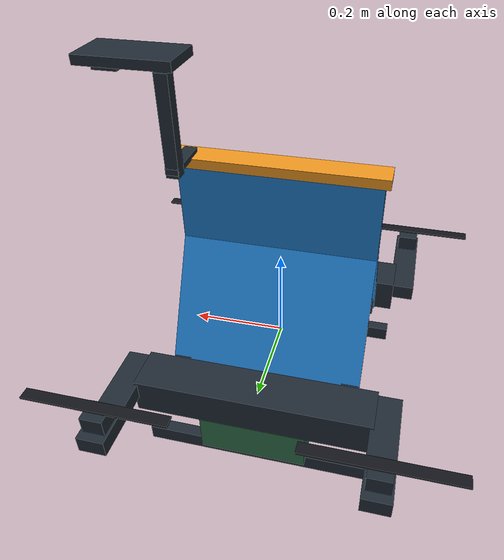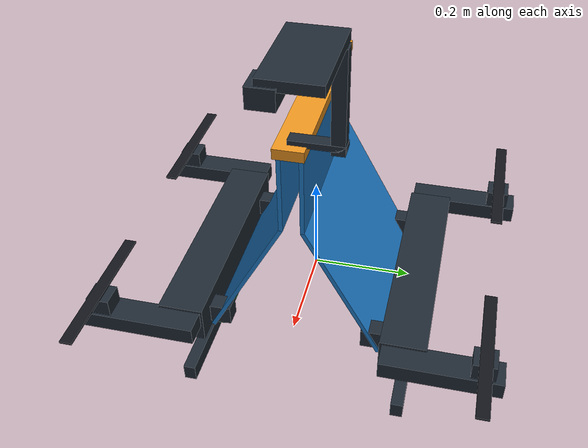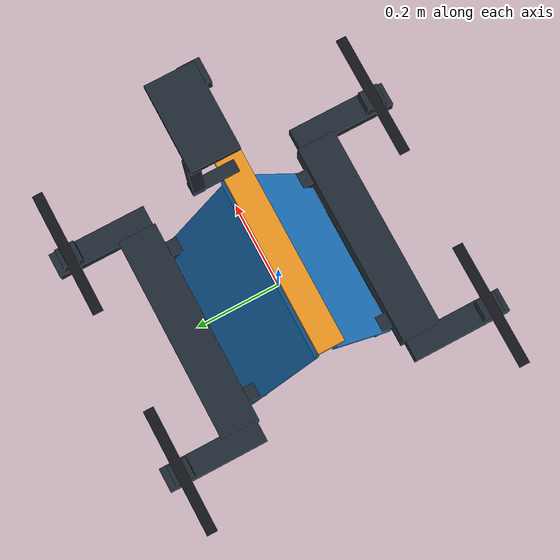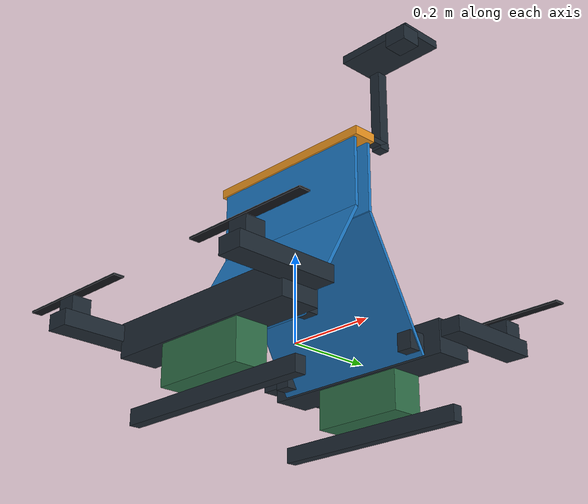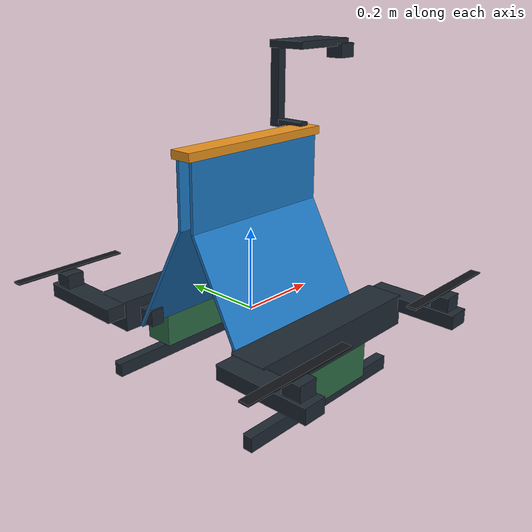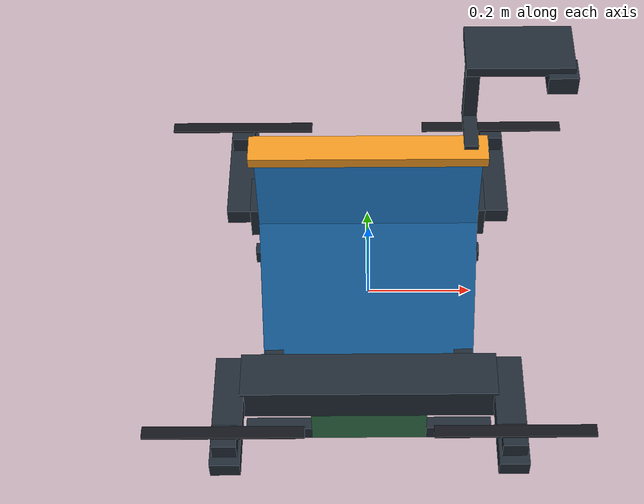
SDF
<?xml version='1.0' encoding='utf-8'?>
<sdf version="1.10">
  <model name="powerline_perching">
    <self_collide>false</self_collide>
    <link name="base_link">
      <inertial>
        <pose>0.006551366309 0.0007097890003 0.03183120028 0 0 0</pose>
        <mass>2.891</mass>
        <inertia>
          <ixx>0.219188799889</ixx>
          <ixy>-0.000406316596333</ixy>
          <ixz>-0.0103420370668</ixz>
          <iyy>0.140336191501</iyy>
          <iyz>-0.00103571837703</iyz>
          <izz>0.217747667632</izz>
        </inertia>
      </inertial>
      <visual name="left_body_visual">
        <pose>0 0.22 0 0 0 0</pose>
        <geometry>
          <box>
            <size>0.48 0.09 0.075</size>
          </box>
        </geometry>
        <material>
          <ambient>.12 .16 .20 1</ambient>
          <diffuse>.12 .16 .20 1</diffuse>
        </material>
      </visual>
      <collision name="left_body_collision">
        <pose>0 0.22 0 0 0 0</pose>
        <geometry>
          <box>
            <size>0.48 0.09 0.075</size>
          </box>
        </geometry>
        <surface>
          <friction>
            <ode>
              <mu>0.65</mu>
              <mu2>0.65</mu2>
            </ode>
          </friction>
        </surface>
      </collision>
      <visual name="left_battery_visual">
        <pose>0 0.22 -0.0825 0 0 0</pose>
        <geometry>
          <box>
            <size>0.22 0.078 0.09</size>
          </box>
        </geometry>
        <material>
          <ambient>.18 .43 .28 1</ambient>
          <diffuse>.18 .43 .28 1</diffuse>
        </material>
      </visual>
      <collision name="left_battery_collision">
        <pose>0 0.22 -0.0825 0 0 0</pose>
        <geometry>
          <box>
            <size>0.22 0.078 0.09</size>
          </box>
        </geometry>
        <surface>
          <friction>
            <ode>
              <mu>0.65</mu>
              <mu2>0.65</mu2>
            </ode>
          </friction>
        </surface>
      </collision>
      <visual name="left_flare_visual">
        <pose>0 0.095 0.1025 0.4993467217 0 0</pose>
        <geometry>
          <box>
            <size>0.4 0.008 0.3132491022</size>
          </box>
        </geometry>
        <material>
          <ambient>.12 .48 .78 1</ambient>
          <diffuse>.12 .48 .78 1</diffuse>
        </material>
      </visual>
      <collision name="left_flare_collision">
        <pose>0 0.095 0.1025 0.4993467217 0 0</pose>
        <geometry>
          <box>
            <size>0.4 0.008 0.3132491022</size>
          </box>
        </geometry>
        <surface>
          <friction>
            <ode>
              <mu>0.65</mu>
              <mu2>0.65</mu2>
            </ode>
          </friction>
        </surface>
      </collision>
      <visual name="left_throat_visual">
        <pose>0 0.02 0.32 0 0 0</pose>
        <geometry>
          <box>
            <size>0.4 0.008 0.16</size>
          </box>
        </geometry>
        <material>
          <ambient>.12 .48 .78 1</ambient>
          <diffuse>.12 .48 .78 1</diffuse>
        </material>
      </visual>
      <collision name="left_throat_collision">
        <pose>0 0.02 0.32 0 0 0</pose>
        <geometry>
          <box>
            <size>0.4 0.008 0.16</size>
          </box>
        </geometry>
        <surface>
          <friction>
            <ode>
              <mu>0.65</mu>
              <mu2>0.65</mu2>
            </ode>
          </friction>
        </surface>
      </collision>
      <visual name="left_front_arm_visual">
        <pose>0.26 0.295 0.015 0 0 0</pose>
        <geometry>
          <box>
            <size>0.055 0.23 0.035</size>
          </box>
        </geometry>
        <material>
          <ambient>.12 .16 .20 1</ambient>
          <diffuse>.12 .16 .20 1</diffuse>
        </material>
      </visual>
      <collision name="left_front_arm_collision">
        <pose>0.26 0.295 0.015 0 0 0</pose>
        <geometry>
          <box>
            <size>0.055 0.23 0.035</size>
          </box>
        </geometry>
        <surface>
          <friction>
            <ode>
              <mu>0.65</mu>
              <mu2>0.65</mu2>
            </ode>
          </friction>
        </surface>
      </collision>
      <visual name="left_front_motor_visual">
        <pose>0.26 0.37 0.045 0 0 0</pose>
        <geometry>
          <box>
            <size>0.045 0.045 0.045</size>
          </box>
        </geometry>
        <material>
          <ambient>.12 .16 .20 1</ambient>
          <diffuse>.12 .16 .20 1</diffuse>
        </material>
      </visual>
      <collision name="left_front_motor_collision">
        <pose>0.26 0.37 0.045 0 0 0</pose>
        <geometry>
          <box>
            <size>0.045 0.045 0.045</size>
          </box>
        </geometry>
        <surface>
          <friction>
            <ode>
              <mu>0.65</mu>
              <mu2>0.65</mu2>
            </ode>
          </friction>
        </surface>
      </collision>
      <visual name="left_rear_arm_visual">
        <pose>-0.26 0.295 0.015 0 0 0</pose>
        <geometry>
          <box>
            <size>0.055 0.23 0.035</size>
          </box>
        </geometry>
        <material>
          <ambient>.12 .16 .20 1</ambient>
          <diffuse>.12 .16 .20 1</diffuse>
        </material>
      </visual>
      <collision name="left_rear_arm_collision">
        <pose>-0.26 0.295 0.015 0 0 0</pose>
        <geometry>
          <box>
            <size>0.055 0.23 0.035</size>
          </box>
        </geometry>
        <surface>
          <friction>
            <ode>
              <mu>0.65</mu>
              <mu2>0.65</mu2>
            </ode>
          </friction>
        </surface>
      </collision>
      <visual name="left_rear_motor_visual">
        <pose>-0.26 0.37 0.045 0 0 0</pose>
        <geometry>
          <box>
            <size>0.045 0.045 0.045</size>
          </box>
        </geometry>
        <material>
          <ambient>.12 .16 .20 1</ambient>
          <diffuse>.12 .16 .20 1</diffuse>
        </material>
      </visual>
      <collision name="left_rear_motor_collision">
        <pose>-0.26 0.37 0.045 0 0 0</pose>
        <geometry>
          <box>
            <size>0.045 0.045 0.045</size>
          </box>
        </geometry>
        <surface>
          <friction>
            <ode>
              <mu>0.65</mu>
              <mu2>0.65</mu2>
            </ode>
          </friction>
        </surface>
      </collision>
      <visual name="left_skid_visual">
        <pose>0 0.22 -0.155 0 0 0</pose>
        <geometry>
          <box>
            <size>0.48 0.025 0.035</size>
          </box>
        </geometry>
        <material>
          <ambient>.12 .16 .20 1</ambient>
          <diffuse>.12 .16 .20 1</diffuse>
        </material>
      </visual>
      <collision name="left_skid_collision">
        <pose>0 0.22 -0.155 0 0 0</pose>
        <geometry>
          <box>
            <size>0.48 0.025 0.035</size>
          </box>
        </geometry>
        <surface>
          <friction>
            <ode>
              <mu>0.65</mu>
              <mu2>0.65</mu2>
            </ode>
          </friction>
        </surface>
      </collision>
      <visual name="left_front_mount_visual">
        <pose>0.18 0.178 -0.007 0 0 0</pose>
        <geometry>
          <box>
            <size>0.035 0.09 0.04</size>
          </box>
        </geometry>
        <material>
          <ambient>.12 .16 .20 1</ambient>
          <diffuse>.12 .16 .20 1</diffuse>
        </material>
      </visual>
      <collision name="left_front_mount_collision">
        <pose>0.18 0.178 -0.007 0 0 0</pose>
        <geometry>
          <box>
            <size>0.035 0.09 0.04</size>
          </box>
        </geometry>
        <surface>
          <friction>
            <ode>
              <mu>0.65</mu>
              <mu2>0.65</mu2>
            </ode>
          </friction>
        </surface>
      </collision>
      <visual name="left_rear_mount_visual">
        <pose>-0.18 0.178 -0.007 0 0 0</pose>
        <geometry>
          <box>
            <size>0.035 0.09 0.04</size>
          </box>
        </geometry>
        <material>
          <ambient>.12 .16 .20 1</ambient>
          <diffuse>.12 .16 .20 1</diffuse>
        </material>
      </visual>
      <collision name="left_rear_mount_collision">
        <pose>-0.18 0.178 -0.007 0 0 0</pose>
        <geometry>
          <box>
            <size>0.035 0.09 0.04</size>
          </box>
        </geometry>
        <surface>
          <friction>
            <ode>
              <mu>0.65</mu>
              <mu2>0.65</mu2>
            </ode>
          </friction>
        </surface>
      </collision>
      <visual name="right_body_visual">
        <pose>0 -0.22 0 0 0 0</pose>
        <geometry>
          <box>
            <size>0.48 0.09 0.075</size>
          </box>
        </geometry>
        <material>
          <ambient>.12 .16 .20 1</ambient>
          <diffuse>.12 .16 .20 1</diffuse>
        </material>
      </visual>
      <collision name="right_body_collision">
        <pose>0 -0.22 0 0 0 0</pose>
        <geometry>
          <box>
            <size>0.48 0.09 0.075</size>
          </box>
        </geometry>
        <surface>
          <friction>
            <ode>
              <mu>0.65</mu>
              <mu2>0.65</mu2>
            </ode>
          </friction>
        </surface>
      </collision>
      <visual name="right_battery_visual">
        <pose>0 -0.22 -0.0825 0 0 0</pose>
        <geometry>
          <box>
            <size>0.22 0.078 0.09</size>
          </box>
        </geometry>
        <material>
          <ambient>.18 .43 .28 1</ambient>
          <diffuse>.18 .43 .28 1</diffuse>
        </material>
      </visual>
      <collision name="right_battery_collision">
        <pose>0 -0.22 -0.0825 0 0 0</pose>
        <geometry>
          <box>
            <size>0.22 0.078 0.09</size>
          </box>
        </geometry>
        <surface>
          <friction>
            <ode>
              <mu>0.65</mu>
              <mu2>0.65</mu2>
            </ode>
          </friction>
        </surface>
      </collision>
      <visual name="right_flare_visual">
        <pose>0 -0.095 0.1025 -0.4993467217 0 0</pose>
        <geometry>
          <box>
            <size>0.4 0.008 0.3132491022</size>
          </box>
        </geometry>
        <material>
          <ambient>.12 .48 .78 1</ambient>
          <diffuse>.12 .48 .78 1</diffuse>
        </material>
      </visual>
      <collision name="right_flare_collision">
        <pose>0 -0.095 0.1025 -0.4993467217 0 0</pose>
        <geometry>
          <box>
            <size>0.4 0.008 0.3132491022</size>
          </box>
        </geometry>
        <surface>
          <friction>
            <ode>
              <mu>0.65</mu>
              <mu2>0.65</mu2>
            </ode>
          </friction>
        </surface>
      </collision>
      <visual name="right_throat_visual">
        <pose>0 -0.02 0.32 0 0 0</pose>
        <geometry>
          <box>
            <size>0.4 0.008 0.16</size>
          </box>
        </geometry>
        <material>
          <ambient>.12 .48 .78 1</ambient>
          <diffuse>.12 .48 .78 1</diffuse>
        </material>
      </visual>
      <collision name="right_throat_collision">
        <pose>0 -0.02 0.32 0 0 0</pose>
        <geometry>
          <box>
            <size>0.4 0.008 0.16</size>
          </box>
        </geometry>
        <surface>
          <friction>
            <ode>
              <mu>0.65</mu>
              <mu2>0.65</mu2>
            </ode>
          </friction>
        </surface>
      </collision>
      <visual name="right_front_arm_visual">
        <pose>0.26 -0.295 0.015 0 0 0</pose>
        <geometry>
          <box>
            <size>0.055 0.23 0.035</size>
          </box>
        </geometry>
        <material>
          <ambient>.12 .16 .20 1</ambient>
          <diffuse>.12 .16 .20 1</diffuse>
        </material>
      </visual>
      <collision name="right_front_arm_collision">
        <pose>0.26 -0.295 0.015 0 0 0</pose>
        <geometry>
          <box>
            <size>0.055 0.23 0.035</size>
          </box>
        </geometry>
        <surface>
          <friction>
            <ode>
              <mu>0.65</mu>
              <mu2>0.65</mu2>
            </ode>
          </friction>
        </surface>
      </collision>
      <visual name="right_front_motor_visual">
        <pose>0.26 -0.37 0.045 0 0 0</pose>
        <geometry>
          <box>
            <size>0.045 0.045 0.045</size>
          </box>
        </geometry>
        <material>
          <ambient>.12 .16 .20 1</ambient>
          <diffuse>.12 .16 .20 1</diffuse>
        </material>
      </visual>
      <collision name="right_front_motor_collision">
        <pose>0.26 -0.37 0.045 0 0 0</pose>
        <geometry>
          <box>
            <size>0.045 0.045 0.045</size>
          </box>
        </geometry>
        <surface>
          <friction>
            <ode>
              <mu>0.65</mu>
              <mu2>0.65</mu2>
            </ode>
          </friction>
        </surface>
      </collision>
      <visual name="right_rear_arm_visual">
        <pose>-0.26 -0.295 0.015 0 0 0</pose>
        <geometry>
          <box>
            <size>0.055 0.23 0.035</size>
          </box>
        </geometry>
        <material>
          <ambient>.12 .16 .20 1</ambient>
          <diffuse>.12 .16 .20 1</diffuse>
        </material>
      </visual>
      <collision name="right_rear_arm_collision">
        <pose>-0.26 -0.295 0.015 0 0 0</pose>
        <geometry>
          <box>
            <size>0.055 0.23 0.035</size>
          </box>
        </geometry>
        <surface>
          <friction>
            <ode>
              <mu>0.65</mu>
              <mu2>0.65</mu2>
            </ode>
          </friction>
        </surface>
      </collision>
      <visual name="right_rear_motor_visual">
        <pose>-0.26 -0.37 0.045 0 0 0</pose>
        <geometry>
          <box>
            <size>0.045 0.045 0.045</size>
          </box>
        </geometry>
        <material>
          <ambient>.12 .16 .20 1</ambient>
          <diffuse>.12 .16 .20 1</diffuse>
        </material>
      </visual>
      <collision name="right_rear_motor_collision">
        <pose>-0.26 -0.37 0.045 0 0 0</pose>
        <geometry>
          <box>
            <size>0.045 0.045 0.045</size>
          </box>
        </geometry>
        <surface>
          <friction>
            <ode>
              <mu>0.65</mu>
              <mu2>0.65</mu2>
            </ode>
          </friction>
        </surface>
      </collision>
      <visual name="right_skid_visual">
        <pose>0 -0.22 -0.155 0 0 0</pose>
        <geometry>
          <box>
            <size>0.48 0.025 0.035</size>
          </box>
        </geometry>
        <material>
          <ambient>.12 .16 .20 1</ambient>
          <diffuse>.12 .16 .20 1</diffuse>
        </material>
      </visual>
      <collision name="right_skid_collision">
        <pose>0 -0.22 -0.155 0 0 0</pose>
        <geometry>
          <box>
            <size>0.48 0.025 0.035</size>
          </box>
        </geometry>
        <surface>
          <friction>
            <ode>
              <mu>0.65</mu>
              <mu2>0.65</mu2>
            </ode>
          </friction>
        </surface>
      </collision>
      <visual name="right_front_mount_visual">
        <pose>0.18 -0.178 -0.007 0 0 0</pose>
        <geometry>
          <box>
            <size>0.035 0.09 0.04</size>
          </box>
        </geometry>
        <material>
          <ambient>.12 .16 .20 1</ambient>
          <diffuse>.12 .16 .20 1</diffuse>
        </material>
      </visual>
      <collision name="right_front_mount_collision">
        <pose>0.18 -0.178 -0.007 0 0 0</pose>
        <geometry>
          <box>
            <size>0.035 0.09 0.04</size>
          </box>
        </geometry>
        <surface>
          <friction>
            <ode>
              <mu>0.65</mu>
              <mu2>0.65</mu2>
            </ode>
          </friction>
        </surface>
      </collision>
      <visual name="right_rear_mount_visual">
        <pose>-0.18 -0.178 -0.007 0 0 0</pose>
        <geometry>
          <box>
            <size>0.035 0.09 0.04</size>
          </box>
        </geometry>
        <material>
          <ambient>.12 .16 .20 1</ambient>
          <diffuse>.12 .16 .20 1</diffuse>
        </material>
      </visual>
      <collision name="right_rear_mount_collision">
        <pose>-0.18 -0.178 -0.007 0 0 0</pose>
        <geometry>
          <box>
            <size>0.035 0.09 0.04</size>
          </box>
        </geometry>
        <surface>
          <friction>
            <ode>
              <mu>0.65</mu>
              <mu2>0.65</mu2>
            </ode>
          </friction>
        </surface>
      </collision>
      <visual name="saddle_visual">
        <pose>0 0 0.41 0 0 0</pose>
        <geometry>
          <box>
            <size>0.42 0.056 0.02</size>
          </box>
        </geometry>
        <material>
          <ambient>.92 .58 .12 1</ambient>
          <diffuse>.92 .58 .12 1</diffuse>
        </material>
      </visual>
      <collision name="saddle_collision">
        <pose>0 0 0.41 0 0 0</pose>
        <geometry>
          <box>
            <size>0.42 0.056 0.02</size>
          </box>
        </geometry>
        <surface>
          <friction>
            <ode>
              <mu>0.65</mu>
              <mu2>0.65</mu2>
            </ode>
          </friction>
        </surface>
      </collision>
      <visual name="camera_mast_visual">
        <pose>0.18 0.08 0.505 0 0 0</pose>
        <geometry>
          <box>
            <size>0.025 0.025 0.19</size>
          </box>
        </geometry>
        <material>
          <ambient>.12 .16 .20 1</ambient>
          <diffuse>.12 .16 .20 1</diffuse>
        </material>
      </visual>
      <collision name="camera_mast_collision">
        <pose>0.18 0.08 0.505 0 0 0</pose>
        <geometry>
          <box>
            <size>0.025 0.025 0.19</size>
          </box>
        </geometry>
        <surface>
          <friction>
            <ode>
              <mu>0.65</mu>
              <mu2>0.65</mu2>
            </ode>
          </friction>
        </surface>
      </collision>
      <visual name="camera_mount_visual">
        <pose>0.18 0.044 0.423 0 0 0</pose>
        <geometry>
          <box>
            <size>0.025 0.1 0.012</size>
          </box>
        </geometry>
        <material>
          <ambient>.12 .16 .20 1</ambient>
          <diffuse>.12 .16 .20 1</diffuse>
        </material>
      </visual>
      <collision name="camera_mount_collision">
        <pose>0.18 0.044 0.423 0 0 0</pose>
        <geometry>
          <box>
            <size>0.025 0.1 0.012</size>
          </box>
        </geometry>
        <surface>
          <friction>
            <ode>
              <mu>0.65</mu>
              <mu2>0.65</mu2>
            </ode>
          </friction>
        </surface>
      </collision>
      <visual name="camera_boom_visual">
        <pose>0.25 0.04 0.61 0 0 0</pose>
        <geometry>
          <box>
            <size>0.18 0.1 0.018</size>
          </box>
        </geometry>
        <material>
          <ambient>.12 .16 .20 1</ambient>
          <diffuse>.12 .16 .20 1</diffuse>
        </material>
      </visual>
      <collision name="camera_boom_collision">
        <pose>0.25 0.04 0.61 0 0 0</pose>
        <geometry>
          <box>
            <size>0.18 0.1 0.018</size>
          </box>
        </geometry>
        <surface>
          <friction>
            <ode>
              <mu>0.65</mu>
              <mu2>0.65</mu2>
            </ode>
          </friction>
        </surface>
      </collision>
      <visual name="camera_body_visual">
        <pose>0.32 0 0.59 0 0 0</pose>
        <geometry>
          <box>
            <size>0.05 0.045 0.035</size>
          </box>
        </geometry>
        <material>
          <ambient>.12 .16 .20 1</ambient>
          <diffuse>.12 .16 .20 1</diffuse>
        </material>
      </visual>
      <collision name="camera_body_collision">
        <pose>0.32 0 0.59 0 0 0</pose>
        <geometry>
          <box>
            <size>0.05 0.045 0.035</size>
          </box>
        </geometry>
        <surface>
          <friction>
            <ode>
              <mu>0.65</mu>
              <mu2>0.65</mu2>
            </ode>
          </friction>
        </surface>
      </collision>
      <sensor name="imu" type="imu">
        <always_on>true</always_on>
        <update_rate>200</update_rate>
        <topic>/powerline_perching/imu</topic>
        <imu />
      </sensor>
      <sensor name="down_camera" type="rgbd_camera">
        <pose>0.32 0 0.568 0 1.57079632679 0</pose>
        <always_on>true</always_on>
        <update_rate>20</update_rate>
        <topic>/powerline_perching/down_camera</topic>
        <camera>
          <horizontal_fov>1.3</horizontal_fov>
          <image>
            <width>640</width>
            <height>480</height>
            <format>R8G8B8</format>
          </image>
          <clip>
            <near>0.04</near>
            <far>12</far>
          </clip>
          <depth_camera>
            <clip>
              <near>0.04</near>
              <far>12</far>
            </clip>
          </depth_camera>
        </camera>
      </sensor>
      <sensor name="saddle_contact" type="contact">
        <always_on>true</always_on>
        <update_rate>100</update_rate>
        <topic>/powerline_perching/contact</topic>
        <contact>
          <topic>/powerline_perching/contact</topic>
          <collision>left_flare_collision</collision>
          <collision>left_throat_collision</collision>
          <collision>right_flare_collision</collision>
          <collision>right_throat_collision</collision>
          <collision>saddle_collision</collision>
        </contact>
      </sensor>
    </link>
    <link name="rotor_0">
      <pose>0.26 -0.37 0.079 0 0 0</pose>
      <inertial>
        <pose>0 0 0 0 0 0</pose>
        <mass>0.018</mass>
        <inertia>
          <ixx>8.88e-07</ixx>
          <ixy>0</ixy>
          <ixz>0</ixz>
          <iyy>0.000126174</iyy>
          <iyz>0</iyz>
          <izz>0.000127014</izz>
        </inertia>
      </inertial>
      <visual name="rotor_0_visual">
        <pose>0 0 0 0 0 0</pose>
        <geometry>
          <box>
            <size>0.29 0.024 0.004</size>
          </box>
        </geometry>
        <material>
          <ambient>.07 .08 .10 1</ambient>
          <diffuse>.07 .08 .10 1</diffuse>
        </material>
      </visual>
      <collision name="rotor_0_collision">
        <pose>0 0 0 0 0 0</pose>
        <geometry>
          <box>
            <size>0.29 0.024 0.004</size>
          </box>
        </geometry>
        <surface>
          <friction>
            <ode>
              <mu>0.65</mu>
              <mu2>0.65</mu2>
            </ode>
          </friction>
        </surface>
      </collision>
    </link>
    <joint name="rotor_0_joint" type="revolute">
      <parent>base_link</parent>
      <child>rotor_0</child>
      <axis>
        <xyz>0 0 1</xyz>
        <limit>
          <lower>-1e+16</lower>
          <upper>1e+16</upper>
        </limit>
        <dynamics>
          <damping>1e-06</damping>
        </dynamics>
      </axis>
    </joint>
    <plugin name="prop_0_plugin" filename="librotors_gazebo_motor_model.so">
      <robotNamespace>powerline_perching</robotNamespace>
      <jointName>rotor_0_joint</jointName>
      <linkName>rotor_0</linkName>
      <turningDirection>ccw</turningDirection>
      <timeConstantUp>0.0125</timeConstantUp>
      <timeConstantDown>0.025</timeConstantDown>
      <maxRotVelocity>900</maxRotVelocity>
      <motorConstant>1.8e-05</motorConstant>
      <momentConstant>0.016</momentConstant>
      <commandSubTopic>command/motor_speed</commandSubTopic>
      <motorNumber>0</motorNumber>
      <rotorDragCoefficient>0.0001</rotorDragCoefficient>
      <rollingMomentCoefficient>1e-06</rollingMomentCoefficient>
      <motorSpeedPubTopic>motor_speed/motor_0</motorSpeedPubTopic>
      <rotorVelocitySlowdownSim>10</rotorVelocitySlowdownSim>
    </plugin>
    <link name="rotor_1">
      <pose>-0.26 -0.37 0.079 0 0 0</pose>
      <inertial>
        <pose>0 0 0 0 0 0</pose>
        <mass>0.018</mass>
        <inertia>
          <ixx>8.88e-07</ixx>
          <ixy>0</ixy>
          <ixz>0</ixz>
          <iyy>0.000126174</iyy>
          <iyz>0</iyz>
          <izz>0.000127014</izz>
        </inertia>
      </inertial>
      <visual name="rotor_1_visual">
        <pose>0 0 0 0 0 0</pose>
        <geometry>
          <box>
            <size>0.29 0.024 0.004</size>
          </box>
        </geometry>
        <material>
          <ambient>.07 .08 .10 1</ambient>
          <diffuse>.07 .08 .10 1</diffuse>
        </material>
      </visual>
      <collision name="rotor_1_collision">
        <pose>0 0 0 0 0 0</pose>
        <geometry>
          <box>
            <size>0.29 0.024 0.004</size>
          </box>
        </geometry>
        <surface>
          <friction>
            <ode>
              <mu>0.65</mu>
              <mu2>0.65</mu2>
            </ode>
          </friction>
        </surface>
      </collision>
    </link>
    <joint name="rotor_1_joint" type="revolute">
      <parent>base_link</parent>
      <child>rotor_1</child>
      <axis>
        <xyz>0 0 1</xyz>
        <limit>
          <lower>-1e+16</lower>
          <upper>1e+16</upper>
        </limit>
        <dynamics>
          <damping>1e-06</damping>
        </dynamics>
      </axis>
    </joint>
    <plugin name="prop_1_plugin" filename="librotors_gazebo_motor_model.so">
      <robotNamespace>powerline_perching</robotNamespace>
      <jointName>rotor_1_joint</jointName>
      <linkName>rotor_1</linkName>
      <turningDirection>cw</turningDirection>
      <timeConstantUp>0.0125</timeConstantUp>
      <timeConstantDown>0.025</timeConstantDown>
      <maxRotVelocity>900</maxRotVelocity>
      <motorConstant>1.8e-05</motorConstant>
      <momentConstant>0.016</momentConstant>
      <commandSubTopic>command/motor_speed</commandSubTopic>
      <motorNumber>1</motorNumber>
      <rotorDragCoefficient>0.0001</rotorDragCoefficient>
      <rollingMomentCoefficient>1e-06</rollingMomentCoefficient>
      <motorSpeedPubTopic>motor_speed/motor_1</motorSpeedPubTopic>
      <rotorVelocitySlowdownSim>10</rotorVelocitySlowdownSim>
    </plugin>
    <link name="rotor_2">
      <pose>-0.26 0.37 0.079 0 0 0</pose>
      <inertial>
        <pose>0 0 0 0 0 0</pose>
        <mass>0.018</mass>
        <inertia>
          <ixx>8.88e-07</ixx>
          <ixy>0</ixy>
          <ixz>0</ixz>
          <iyy>0.000126174</iyy>
          <iyz>0</iyz>
          <izz>0.000127014</izz>
        </inertia>
      </inertial>
      <visual name="rotor_2_visual">
        <pose>0 0 0 0 0 0</pose>
        <geometry>
          <box>
            <size>0.29 0.024 0.004</size>
          </box>
        </geometry>
        <material>
          <ambient>.07 .08 .10 1</ambient>
          <diffuse>.07 .08 .10 1</diffuse>
        </material>
      </visual>
      <collision name="rotor_2_collision">
        <pose>0 0 0 0 0 0</pose>
        <geometry>
          <box>
            <size>0.29 0.024 0.004</size>
          </box>
        </geometry>
        <surface>
          <friction>
            <ode>
              <mu>0.65</mu>
              <mu2>0.65</mu2>
            </ode>
          </friction>
        </surface>
      </collision>
    </link>
    <joint name="rotor_2_joint" type="revolute">
      <parent>base_link</parent>
      <child>rotor_2</child>
      <axis>
        <xyz>0 0 1</xyz>
        <limit>
          <lower>-1e+16</lower>
          <upper>1e+16</upper>
        </limit>
        <dynamics>
          <damping>1e-06</damping>
        </dynamics>
      </axis>
    </joint>
    <plugin name="prop_2_plugin" filename="librotors_gazebo_motor_model.so">
      <robotNamespace>powerline_perching</robotNamespace>
      <jointName>rotor_2_joint</jointName>
      <linkName>rotor_2</linkName>
      <turningDirection>ccw</turningDirection>
      <timeConstantUp>0.0125</timeConstantUp>
      <timeConstantDown>0.025</timeConstantDown>
      <maxRotVelocity>900</maxRotVelocity>
      <motorConstant>1.8e-05</motorConstant>
      <momentConstant>0.016</momentConstant>
      <commandSubTopic>command/motor_speed</commandSubTopic>
      <motorNumber>2</motorNumber>
      <rotorDragCoefficient>0.0001</rotorDragCoefficient>
      <rollingMomentCoefficient>1e-06</rollingMomentCoefficient>
      <motorSpeedPubTopic>motor_speed/motor_2</motorSpeedPubTopic>
      <rotorVelocitySlowdownSim>10</rotorVelocitySlowdownSim>
    </plugin>
    <link name="rotor_3">
      <pose>0.26 0.37 0.079 0 0 0</pose>
      <inertial>
        <pose>0 0 0 0 0 0</pose>
        <mass>0.018</mass>
        <inertia>
          <ixx>8.88e-07</ixx>
          <ixy>0</ixy>
          <ixz>0</ixz>
          <iyy>0.000126174</iyy>
          <iyz>0</iyz>
          <izz>0.000127014</izz>
        </inertia>
      </inertial>
      <visual name="rotor_3_visual">
        <pose>0 0 0 0 0 0</pose>
        <geometry>
          <box>
            <size>0.29 0.024 0.004</size>
          </box>
        </geometry>
        <material>
          <ambient>.07 .08 .10 1</ambient>
          <diffuse>.07 .08 .10 1</diffuse>
        </material>
      </visual>
      <collision name="rotor_3_collision">
        <pose>0 0 0 0 0 0</pose>
        <geometry>
          <box>
            <size>0.29 0.024 0.004</size>
          </box>
        </geometry>
        <surface>
          <friction>
            <ode>
              <mu>0.65</mu>
              <mu2>0.65</mu2>
            </ode>
          </friction>
        </surface>
      </collision>
    </link>
    <joint name="rotor_3_joint" type="revolute">
      <parent>base_link</parent>
      <child>rotor_3</child>
      <axis>
        <xyz>0 0 1</xyz>
        <limit>
          <lower>-1e+16</lower>
          <upper>1e+16</upper>
        </limit>
        <dynamics>
          <damping>1e-06</damping>
        </dynamics>
      </axis>
    </joint>
    <plugin name="prop_3_plugin" filename="librotors_gazebo_motor_model.so">
      <robotNamespace>powerline_perching</robotNamespace>
      <jointName>rotor_3_joint</jointName>
      <linkName>rotor_3</linkName>
      <turningDirection>cw</turningDirection>
      <timeConstantUp>0.0125</timeConstantUp>
      <timeConstantDown>0.025</timeConstantDown>
      <maxRotVelocity>900</maxRotVelocity>
      <motorConstant>1.8e-05</motorConstant>
      <momentConstant>0.016</momentConstant>
      <commandSubTopic>command/motor_speed</commandSubTopic>
      <motorNumber>3</motorNumber>
      <rotorDragCoefficient>0.0001</rotorDragCoefficient>
      <rollingMomentCoefficient>1e-06</rollingMomentCoefficient>
      <motorSpeedPubTopic>motor_speed/motor_3</motorSpeedPubTopic>
      <rotorVelocitySlowdownSim>10</rotorVelocitySlowdownSim>
    </plugin>
    <plugin filename="gz-sim-odometry-publisher-system" name="gz::sim::systems::OdometryPublisher">
      <odom_frame>world</odom_frame>
      <robot_base_frame>base_link</robot_base_frame>
      <odom_publish_frequency>50</odom_publish_frequency>
      <dimensions>3</dimensions>
      <odom_topic>/powerline_perching/odometry</odom_topic>
    </plugin>
  </model>
</sdf>
